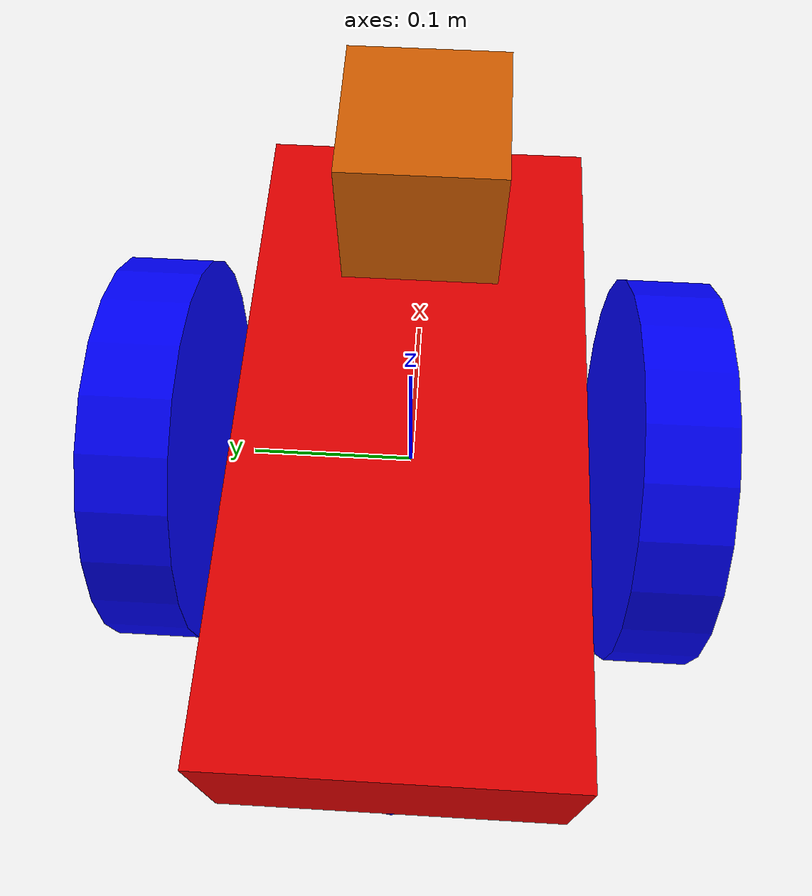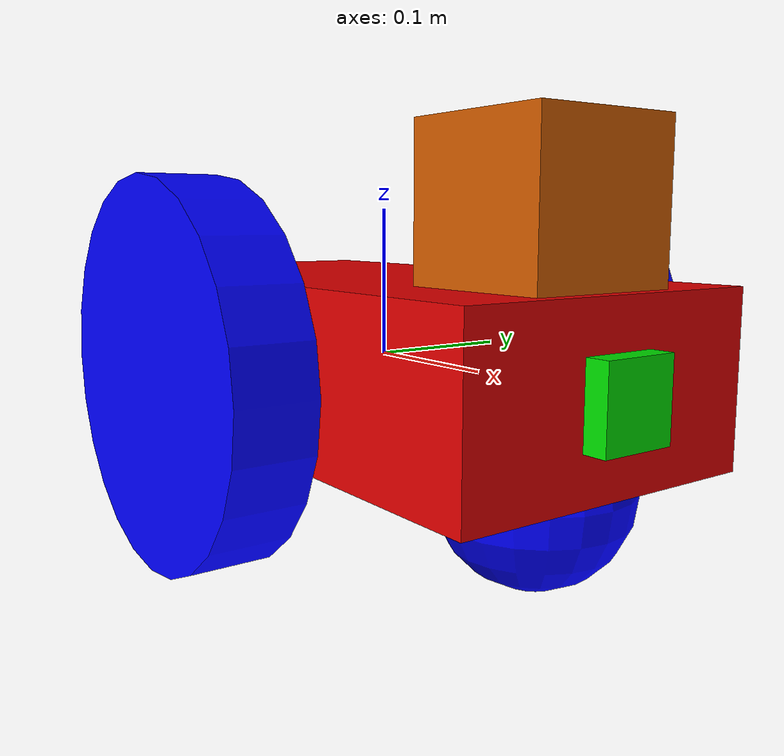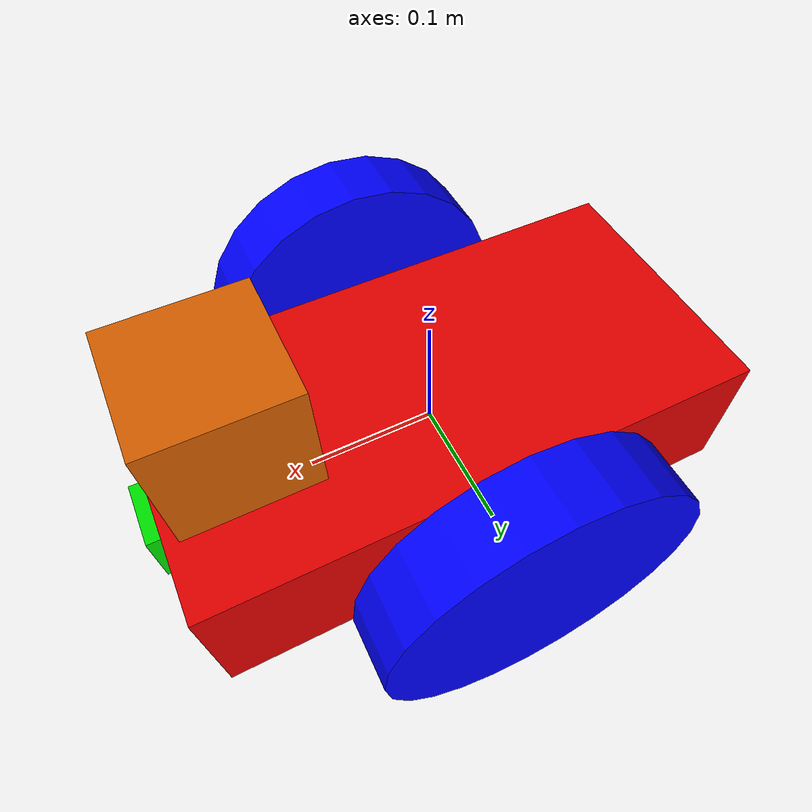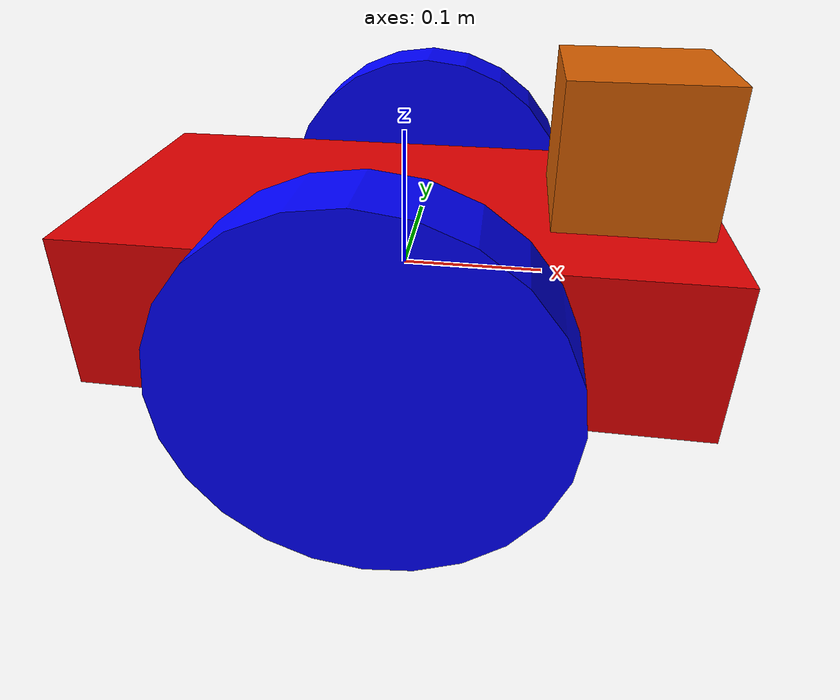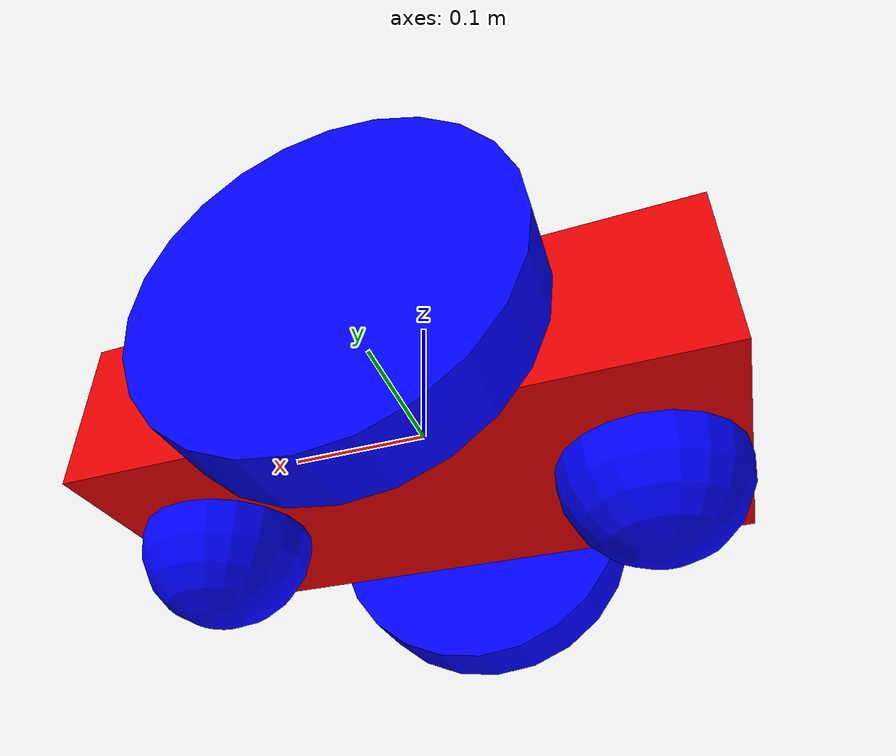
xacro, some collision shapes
<robot name="my_robot" xmlns:xacro="http://www.ros.org/wiki/xacro">
<xacro:include filename="$(find my_robot)/urdf/my_robot.gazebo" />

  <material name="blue">
    <color rgba= "0 0 1 1"/>
  </material>
  <material name="grey">
    <color rgba="0.75 0.75 0.75 1"/>
  </material>
  <material name="red">
    <color rgba="0.9 0.0 0.0 1"/>
  </material>
  <material name="green">
    <color rgba="0.0 0.9 0.0 1"/>
  </material>

  <link name="robot_footprint"></link>

  <joint name="robot_footprint_joint" type="fixed">
    <origin xyz="0 0 0" rpy="0 0 0" />
    <parent link="robot_footprint"/>
    <child link="chassis" />
  </joint>

  <link name='chassis'>
    <pose>0 0 0.1 0 0 0</pose>

    <inertial>
      <mass value="15.0"/>
      <origin xyz="0.0 0 0" rpy=" 0 0 0"/>
      <inertia
          ixx="0.1" ixy="0" ixz="0"
          iyy="0.1" iyz="0"
          izz="0.1"
      />
    </inertial>

    <collision name='collision'>
      <origin xyz="0 0 0" rpy=" 0 0 0"/>
      <geometry>
        <box size=".42 .21 .11"/>
      </geometry>
    </collision>

    <visual name='chassis_visual'>
      <origin xyz="0 0 0" rpy=" 0 0 0"/>
      <geometry>
        <box size=".42 .21 .11"/>
      </geometry>
	  <material name= "red"/>
    </visual>

    <collision name='back_caster_collision'>
      <origin xyz="-0.15 0 -0.06" rpy=" 0 0 0"/>
      <geometry>
        <sphere radius="0.06"/>
      </geometry>
    </collision>

    <visual name='back_caster_visual'>
      <origin xyz="-0.15 0 -0.06" rpy=" 0 0 0"/>
      <geometry>
        <sphere radius="0.06"/>
      </geometry>
	  <material name= "blue"/>
    </visual>

    <collision name='front_caster_collision'>
      <origin xyz="0.15 0 -0.06" rpy=" 0 0 0"/>
      <geometry>
        <sphere radius="0.06"/>
      </geometry>
    </collision>

    <visual name='front_caster_visual'>
      <origin xyz="0.15 0 -0.06" rpy=" 0 0 0"/>
      <geometry>
        <sphere radius="0.06"/>
      </geometry>
	  <material name= "blue"/>
    </visual>

  </link>

<link name='left_wheel'>
    <pose>0 0.10 0.12 0 0 0</pose>

    <inertial>
      <mass value="5.0"/>
      <origin xyz="0.0 0 0" rpy=" 0 1.5705 1.5707"/>
      <inertia
          ixx="0.1" ixy="0" ixz="0"
          iyy="0.1" iyz="0"
          izz="0.1"
      />
    </inertial>

    <collision name='left_wheel_collision'>
      <origin xyz="0.0 0 0" rpy=" 0 1.5705 1.5707"/>
      <geometry>
        <cylinder radius="0.12" length ="0.05"/>
      </geometry>
    </collision>

    <visual name='left_wheel_visual'>
      <origin xyz="0.0 0 0" rpy=" 0 1.5705 1.5707"/>
      <geometry>
        <cylinder radius="0.12" length ="0.05"/>
      </geometry>
	  <material name= "blue"/>
	</visual>
</link>

<link name='right_wheel'>
    <pose>0 -0.10 0.12 0 0 0</pose>

    <inertial>
      <mass value="5.0"/>
      <origin xyz="0.0 0 0" rpy=" 0 1.5705 1.5707"/>
      <inertia
          ixx="0.1" ixy="0" ixz="0"
          iyy="0.1" iyz="0"
          izz="0.1"
      />
    </inertial>

    <collision name='right_wheel_collision'>
      <origin xyz="0.0 0 0" rpy=" 0 1.5705 1.5707"/>
      <geometry>
        <cylinder radius="0.12" length ="0.05"/>
      </geometry>
    </collision>

    <visual name='right_wheel_visual'>
      <origin xyz="0.0 0 0" rpy=" 0 1.5705 1.5707"/>
      <geometry>
        <cylinder radius="0.12" length ="0.05"/>
      </geometry>
	  <material name= "blue"/>
    </visual>
</link>

  <link name='camera'>
    <pose>0 0 0.0 0 0 0</pose>

    <inertial>
      <mass value="0.1"/>
      <origin xyz="0.0 0 0" rpy=" 0 0 0"/>
      <inertia
          ixx="1e-6" ixy="0" ixz="0"
          iyy="1e-6" iyz="0"
          izz="1e-6"
      />
    </inertial>

    <collision name='collision'>
      <origin xyz="0 0 0" rpy=" 0 0 0"/>
      <geometry>
        <box size=".05 .05 .05"/>
      </geometry>
    </collision>

    <visual name='camera_visual'>
      <origin xyz="0 0 0" rpy=" 0 0 0"/>
      <geometry>
        <box size=".05 .05 .05"/>
      </geometry>
	  <material name= "green"/>
    </visual>
</link>

  <link name='hokuyo'>
    <pose>0 0 0.0 0 0 0</pose>

    <inertial>
      <mass value="1e-5"/>
      <origin xyz="0.0 0 0" rpy=" 0 0 0"/>
      <inertia
          ixx="1e-6" ixy="0" ixz="0"
          iyy="1e-6" iyz="0"
          izz="1e-6"
      />
    </inertial>

    <collision name='collision'>
      <origin xyz="0 0 0" rpy=" 0 0 0"/>
      <geometry>
        <box size=".1 .1 .1"/>
      </geometry>
    </collision>

    <visual name='hokuyo_visual'>
      <origin xyz="0 0 0" rpy=" 0 0 0"/>
      <geometry>
        <mesh filename ="package://my_robot/meshes/hokuyo.dae"/>
      </geometry>
    </visual>
</link>

  <joint type="continuous" name="left_wheel_hinge">
    <origin xyz="0 0.15 0" rpy="0 0 0"/>
    <child link="left_wheel"/>s
    <parent link="chassis"/>
    <axis xyz="0 1 0" rpy="0 0 0"/>
    <limit effort="10000" velocity="1000"/>
    <dynamics damping="1.0" friction="1.0"/>
  </joint>

  <joint type="continuous" name="right_wheel_hinge">
    <origin xyz="0 -0.15 0" rpy="0 0 0"/>
    <child link="right_wheel"/>s
    <parent link="chassis"/>
    <axis xyz="0 1 0" rpy="0 0 0"/>
    <limit effort="10000" velocity="1000"/>
    <dynamics damping="1.0" friction="1.0"/>
  </joint>

  <joint type="fixed" name="camera_joint">
    <origin xyz="0.2 0 0" rpy="0 0 0"/>
    <child link="camera"/>
    <parent link="chassis"/>
    <axis xyz="0 1 0" rpy="0 0 0"/>s
  </joint>

  <joint type="fixed" name="hokuyo_joint">
    <origin xyz="0.15 0 0.1" rpy="0 0 0"/>
    <child link="hokuyo"/>
    <parent link="chassis"/>
    <axis xyz="0 1 0" rpy="0 0 0"/>s
  </joint>

  <!-- Color the components in Gazebo-->

  <gazebo reference="chassis">
    <material>Gazebo/Red</material>
  </gazebo>

  <gazebo reference="left_wheel">
    <material>Gazebo/Green</material>
  </gazebo>

  <gazebo reference="right_wheel">
    <material>Gazebo/Green</material>
  </gazebo>

  <gazebo reference="camera">
    <material>Gazebo/Blue</material>
  </gazebo>

</robot>
